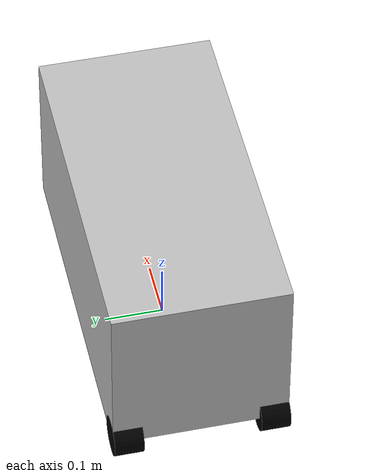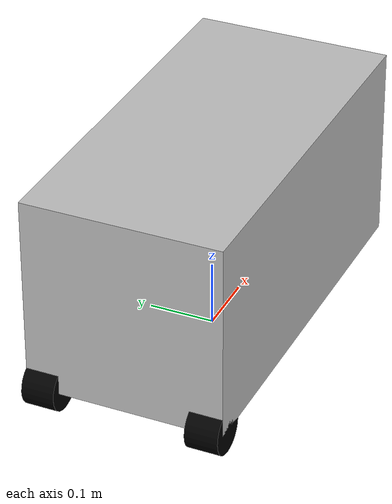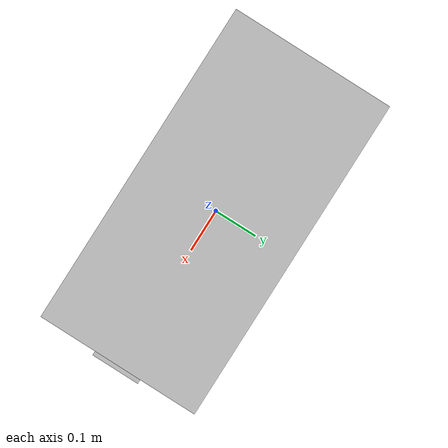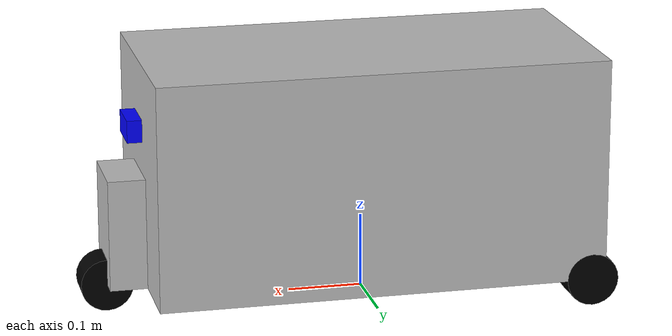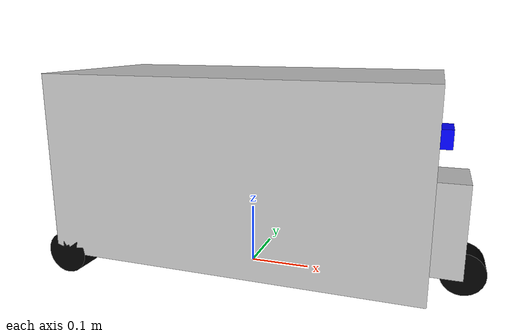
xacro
<?xml version="1.0"?>

<robot xmlns:xacro="http://ros.org/wiki/xacro" name="tortoisebot">
<xacro:include filename="$(find depth_to_pcl)/urdf/model.gazebo"/>

	<link name="base_link">
		<visual>
			<geometry>
				<box size="0.6 0.3 0.3"/>
			</geometry>
			<material name="silver">
				<color rgba="0.75 0.75 0.75 1"/>
			</material>
		</visual>
		<collision>
			<geometry>
				<box size="0.6 0.3 0.3"/>
			</geometry>
		</collision>
		<inertial>
			<mass value="1.0"/>
			<inertia ixx="0.015" iyy="0.0375" izz="0.0375" ixy="0" ixz="0" iyz="0"/>
		</inertial>
	</link>

	<link name = "base_footprint"/>

	<joint name="base_footprint_joint" type="fixed">
    <parent link="base_footprint"/>
    <child link="base_link"/>
    <origin xyz="0 0 0.185" rpy="0 0 0"/>
</joint>

	<link name="front_caster">
		<visual>
			<geometry>
				<box size="0.1 0.1 0.15"/>
			</geometry>
			<material name="silver">
				<color rgba="0.75 0.75 0.75 1"/>
			</material>
		</visual>
		<collision>
			<geometry>
				<box size="0.1 0.1 0.15"/>
			</geometry>
		</collision>
		<inertial>
			<mass value="0.05"/>
			<inertia ixx="0.00013542" iyy="0.00013542" izz="0.00008333" ixy="0" ixz="0" iyz="0"/>
		</inertial>
	</link>
	<joint name="front_caster_joint" type="continuous">
		<axis xyz="0 0 1"/>
		<parent link="base_link"/>
		<child link="front_caster"/>
		<origin rpy="0 0 0" xyz="0.3 0 -0.075"/>
	</joint>
	<link name="front_wheel">
		<visual>
			<geometry>
				<cylinder length="0.05" radius="0.035"/>
			</geometry>
			<material name="black">
				<color rgba="0 0 0 1"/>
			</material>
		</visual>
		<collision>
			<geometry>
				<cylinder length="0.05" radius="0.035"/>
			</geometry>
		</collision>
		<inertial>
			<mass value="0.1"/>
			<inertia ixx="5.1458e-5" iyy="5.1458e-5" izz="6.125e-5" ixy="0" ixz="0" iyz="0"/>
		</inertial>
	</link>
	<joint name="front_wheel_joint" type="continuous">
		<axis xyz="0 0 1"/>
		<parent link="front_caster"/>
		<child link="front_wheel"/>
		<origin rpy="-1.5708 0 0" xyz="0.05 0 -.075"/>
	</joint>
	<link name="right_wheel">
		<visual>
			<geometry>
				<cylinder length="0.05" radius="0.035"/>
			</geometry>
			<material name="black">
				<color rgba="0 0 0 1"/>
			</material>
		</visual>
		<collision>
			<geometry>
				<cylinder length="0.05" radius="0.035"/>
			</geometry>
		</collision>
		<inertial>
			<mass value="0.1"/>
			<inertia ixx="5.1458e-5" iyy="5.1458e-5" izz="6.125e-5" ixy="0" ixz="0" iyz="0"/>
		</inertial>
	</link>
	<joint name="right_wheel_joint" type="continuous">
		<axis xyz="0 0 1">
		<limit>
		<effort>20</effort>
		</limit>
		</axis>
		<max_linear_acceleration>0.033</max_linear_acceleration>
		<parent link="base_link"/>
		<child link="right_wheel"/>
		<origin rpy="-1.5708 0 0" xyz="-0.2825 -0.125 -.15"/>
	</joint>
	<link name="left_wheel">
		<visual>
			<geometry>
				<cylinder length="0.05" radius="0.035"/>
			</geometry>
			<material name="black">
				<color rgba="0 0 0 1"/>
			</material>
		</visual>
		<collision>
			<geometry>
				<cylinder length="0.05" radius="0.035"/>
			</geometry>
		</collision>
		<inertial>
			<mass value="0.1"/>
			<inertia ixx="5.1458e-5" iyy="5.1458e-5" izz="6.125e-5" ixy="0" ixz="0" iyz="0"/>
		</inertial>
	</link>

	<joint name="left_wheel_joint" type="continuous">
		<axis xyz="0 0 1">
		<limit>
		<effort>20</effort>
		</limit>
		</axis>
		<max_linear_acceleration>0.033</max_linear_acceleration>
		<parent link="base_link"/>
		<child link="left_wheel"/>
		<origin rpy="-1.5708 0 0" xyz="-0.2825 0.125 -.15"/>
	</joint>

<link name="camera_link">
  <visual>
    <geometry>
      <box size="0.02 0.06 0.03"/>
    </geometry>
    <material name="blue">
      <color rgba="0 0 1 1"/>
    </material>
  </visual>
  <collision>
    <geometry>
      <box size="0.02 0.06 0.03"/>
    </geometry>
  </collision>
  <inertial>
    <mass value="0.05"/>
    <inertia ixx="1e-5" iyy="1e-5" izz="1e-5" ixy="0" ixz="0" iyz="0"/>
  </inertial>
</link>

<joint name="camera_joint" type="fixed">
  <parent link="base_link"/>
  <child link="camera_link"/>
  <origin xyz="0.31 0.0 0.06" rpy="0 0 0"/>
</joint>

<link name="camera_optical_frame"/>
<joint name="camera_optical_frame_joint" type="fixed">
  <parent link="camera_link"/>
  <child link="camera_optical_frame"/>
  <origin xyz="0 0 0" rpy="-1.5708 0 -1.5708"/>
</joint>

</robot>
